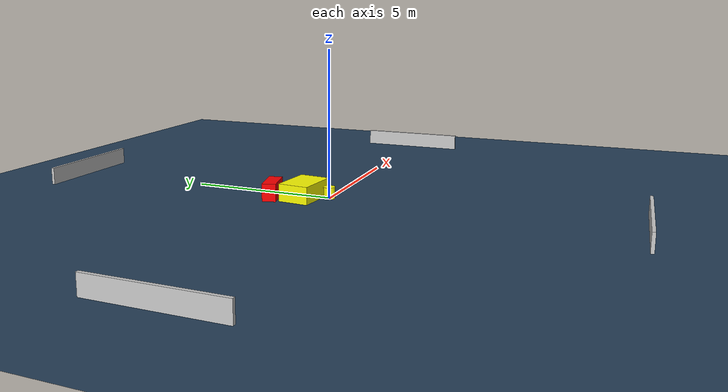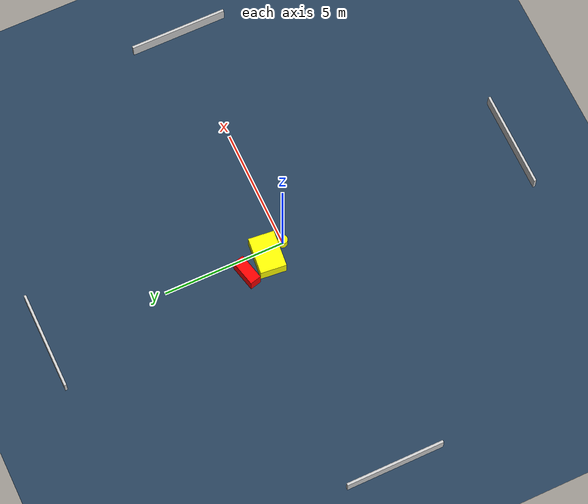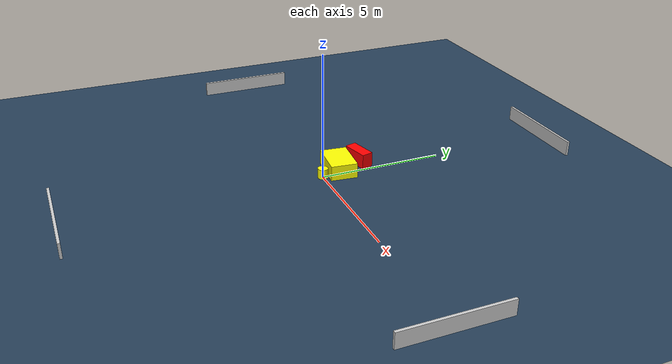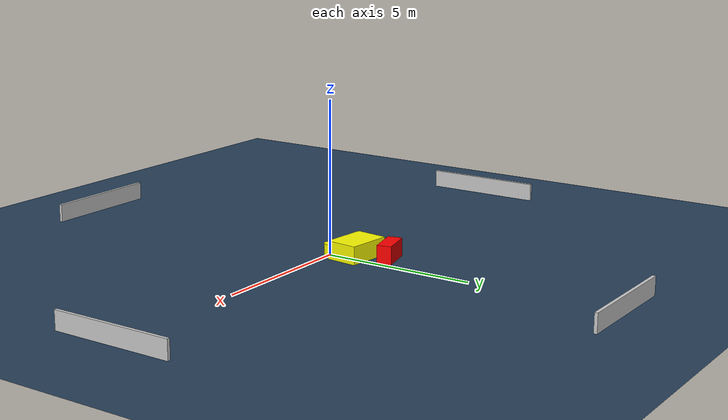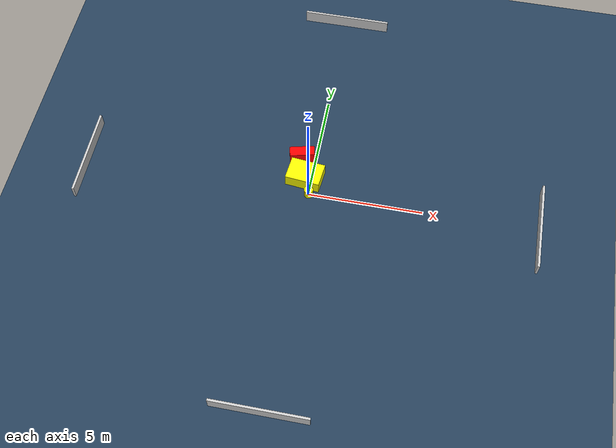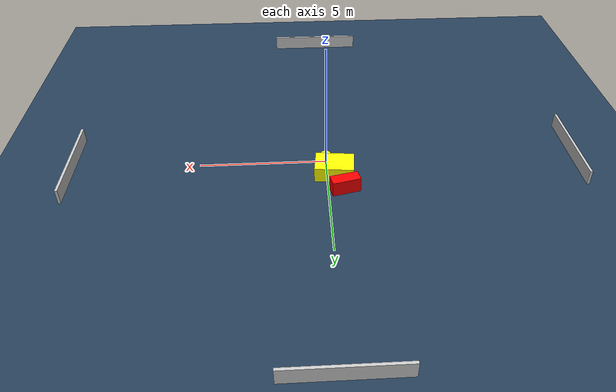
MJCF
<?xml version="1.0" ?>
<mujoco model="generated_environment">
  <option timestep="0.01" integrator="RK4" cone="elliptic"/>
  <default>
    <geom density="1"/>
  </default>
  <asset>
    <texture builtin="gradient" height="3072" name="skybox" rgb1="0.3 0.5 0.7" rgb2="0 0 0" type="skybox" width="512"/>
    <texture builtin="checker" height="300" name="groundplane" rgb1="0.2 0.3 0.4" rgb2="0.1 0.2 0.3" type="2d" width="300"/>
    <material name="groundplane" reflectance="0.2" texrepeat="5 5" texture="groundplane"/>
  </asset>
  <worldbody>
    <light dir="0 0 -1" directional="true" pos="0 0 1.5"/>
    <geom condim="3" friction="0.5 0.005 0.001" material="groundplane" name="floor" pos="0 0 0" size="0 0 0.05" type="plane"/>
    <body name="walls">
      <geom name="wall_1" condim="4" pos="-10.0 0.0 0.3" rgba="0.800000011920929 0.800000011920929 0.800000011920929 1.0" size="0.05 2.0 0.3" type="box"/>
      <geom name="wall_2" condim="4" pos="10.0 0.0 0.3" rgba="0.800000011920929 0.800000011920929 0.800000011920929 1.0" size="0.05 2.0 0.3" type="box"/>
      <geom name="wall_3" condim="4" pos="0.0 -10.0 0.3" rgba="0.800000011920929 0.800000011920929 0.800000011920929 1.0" size="2.0 0.05 0.3" type="box"/>
      <geom name="wall_4" condim="4" pos="0.0 10.0 0.3" rgba="0.800000011920929 0.800000011920929 0.800000011920929 1.0" size="2.0 0.05 0.3" type="box"/>
    </body>
    <body name="robot">
      <joint name="joint_x" type="slide" pos="0 0 0" axis="1 0 0"/>
      <joint name="joint_y" type="slide" pos="0 0 0" axis="0 1 0"/>
      <geom name="robot" type="cylinder" pos="0.0 0.0 0.2" size="0.2 0.2 0.0" mass="5.0" friction="1.0 0.005 0.0001" condim="4" rgba="1.0 1.0 0.0 1.0"/>
    </body>
    <body name="obstacle_1_movable">
      <geom name="obstacle_1_movable" condim="4" pos="-0.30022615768997213 0.7936571963922118 0.3" euler="0 0 264.15246789333827" friction="0.0 0.005 0.001" rgba="1.0 1.0 0.0 1.0" size="0.5313753482358552 0.7589890915563853 0.3" type="box" mass="0.1"/>
      <joint type="free"/>
    </body>
    <body name="obstacle_2_static">
      <geom name="obstacle_2_static" condim="4" pos="-0.6350239164520056 1.8179118523526374 0.3" euler="0 0 283.8278591599243" friction="0.0 0.005 0.001" rgba="1.0 0.0 0.0 1.0" size="0.2350068006433147 0.5513064428678476 0.3" type="box"/>
    </body>
  </worldbody>
  <actuator>
    <motor name="actuator_x" joint="joint_x" gear="1" ctrlrange="-1 1"/>
    <motor name="actuator_y" joint="joint_y" gear="1" ctrlrange="-1 1"/>
  </actuator>
</mujoco>
